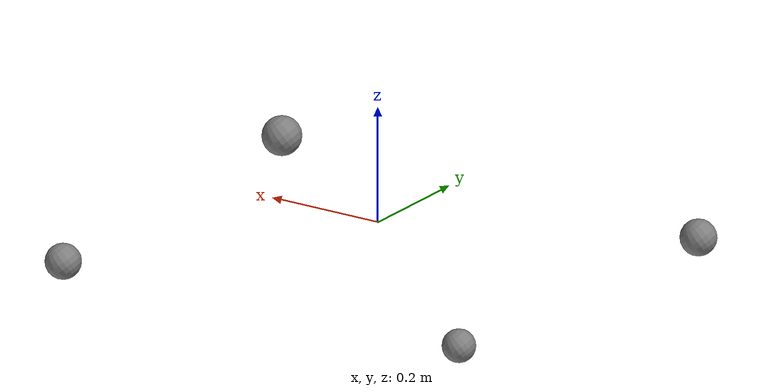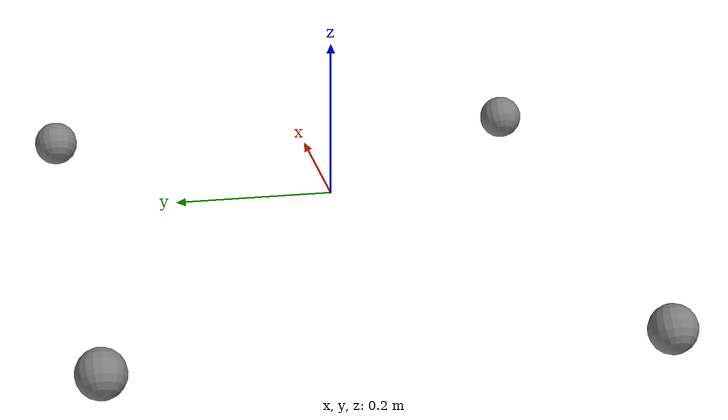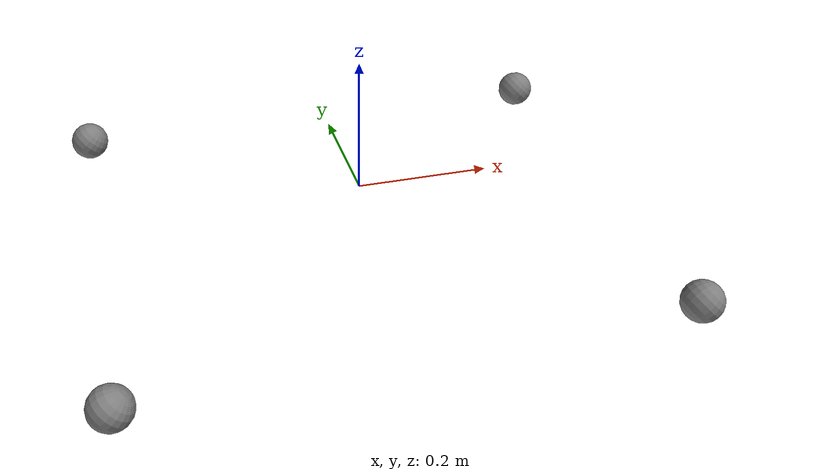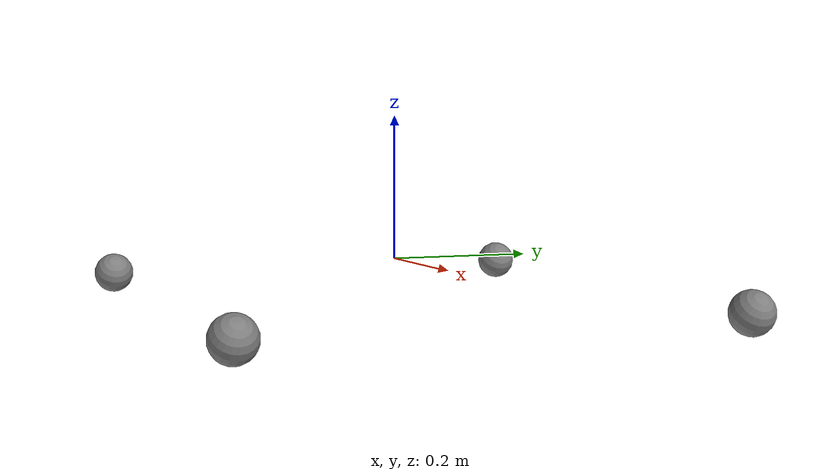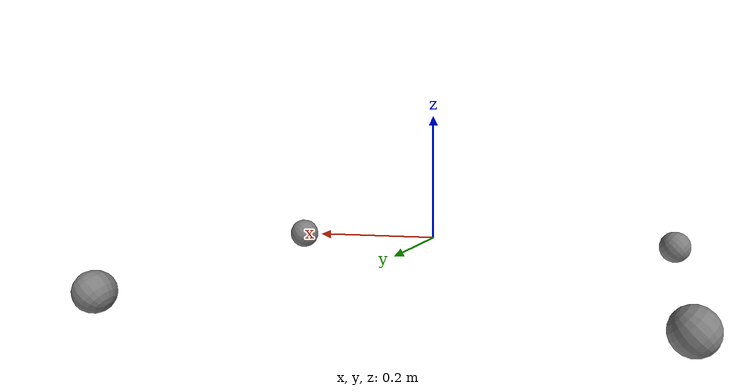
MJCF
<mujoco model="kyon">
  <compiler angle="radian"/>

  <worldbody>
    <body name="pelvis" pos="0 0 0.6">
      <inertial pos="0.0289242 0.00140306 0.0582193" quat="0.534499 0.4627 0.486194 0.513649" mass="29.7628" diaginertia="1.44559 1.43622 0.333359"/>
      <joint name="reference" type="free"/>
      <body name="hip_roll_1_link" pos="0.391 0.0775 0" quat="0.707107 0 0.707107 0">
        <inertial pos="-0.000673177 0.00653492 -0.115647" quat="0.714418 0.049129 -0.0515476 0.696087" mass="2.57724" diaginertia="0.0146936 0.0141982 0.00434233"/>
        <joint name="hip_roll_1" pos="0 0 0" axis="0 0 -1" range="-0.65 0.65" actuatorfrcrange="-185 185"/>
        <body name="hip_pitch_1_link" pos="0 -0.04746 0" quat="0.5 -0.5 0.5 0.5">
          <inertial pos="6.96539e-05 -0.0776661 0.146893" quat="0.811804 0.583816 0.00415654 -0.0107198" mass="6.43661" diaginertia="0.121449 0.109742 0.0183206"/>
          <joint name="hip_pitch_1" pos="0 0 0" axis="0 0 -1" range="-2.4056 2.4056" actuatorfrcrange="-185 185"/>
          <body name="knee_pitch_1_link" pos="0 -0.346 0.24606">
            <inertial pos="4.41503e-06 -0.130029 0.00631671" quat="0.764263 0.638276 0.0591287 -0.0707774" mass="0.822099" diaginertia="0.016645 0.0166448 0.000635156"/>
            <joint name="knee_pitch_1" pos="0 0 0" axis="0 0 -1" range="-3.2 3.2" actuatorfrcrange="-185 185"/>
            <geom name="contact_1" size="0.03" pos="0 -0.3 0.054" quat="0.653595 -0.653075 -0.27036 0.270576"/>
          </body>
        </body>
      </body>
      <body name="hip_roll_2_link" pos="0.391 -0.0775 0" quat="0.707107 0 0.707107 0">
        <inertial pos="-0.000673177 0.00653492 -0.115647" quat="0.696087 -0.0515476 0.049129 0.714418" mass="2.57724" diaginertia="0.0146936 0.0141982 0.00434233"/>
        <joint name="hip_roll_2" pos="0 0 0" axis="0 0 -1" range="-0.65 0.65" actuatorfrcrange="-185 185"/>
        <body name="hip_pitch_2_link" pos="0 0.04746 0" quat="0.5 0.5 -0.5 0.5">
          <inertial pos="6.96539e-05 -0.0776661 0.146893" quat="0.811804 0.583816 0.00415654 -0.0107198" mass="6.43661" diaginertia="0.121449 0.109742 0.0183206"/>
          <joint name="hip_pitch_2" pos="0 0 0" axis="0 0 -1" range="-2.3266 2.3266" actuatorfrcrange="-185 185"/>
          <body name="knee_pitch_2_link" pos="0 -0.346 0.24606">
            <inertial pos="4.41503e-06 -0.130029 0.00631671" quat="0.760704 0.635302 -0.0853446 0.102158" mass="0.822099" diaginertia="0.016645 0.0166448 0.000635156"/>
            <joint name="knee_pitch_2" pos="0 0 0" axis="0 0 -1" range="-3.2 3.2" actuatorfrcrange="-185 185"/>
            <geom name="contact_2" size="0.03" pos="0 -0.3 0.054" quat="0.270769 0.270554 0.652995 0.653515"/>
          </body>
        </body>
      </body>
      <body name="hip_roll_3_link" pos="-0.391 0.0775 0" quat="0.707107 0 -0.707107 0">
        <inertial pos="-0.000673177 0.00653492 -0.115647" quat="0.714418 0.049129 -0.0515476 0.696087" mass="2.57724" diaginertia="0.0146936 0.0141982 0.00434233"/>
        <joint name="hip_roll_3" pos="0 0 0" axis="0 0 -1" range="-0.65 0.65" actuatorfrcrange="-185 185"/>
        <body name="hip_pitch_3_link" pos="0 -0.04746 0" quat="0.5 -0.5 -0.5 -0.5">
          <inertial pos="6.96539e-05 -0.0776661 0.146893" quat="0.811804 0.583816 0.00415654 -0.0107198" mass="6.43661" diaginertia="0.121449 0.109742 0.0183206"/>
          <joint name="hip_pitch_3" pos="0 0 0" axis="0 0 -1" range="-2.4696 2.4696" actuatorfrcrange="-185 185"/>
          <body name="knee_pitch_3_link" pos="0 -0.346 0.24606">
            <inertial pos="4.41503e-06 -0.130029 0.00631671" quat="0.764263 0.638276 0.0591287 -0.0707774" mass="0.822099" diaginertia="0.016645 0.0166448 0.000635156"/>
            <joint name="knee_pitch_3" pos="0 0 0" axis="0 0 -1" range="-3.2 3.2" actuatorfrcrange="-185 185"/>
            <geom name="contact_3" size="0.03" pos="0 -0.3 0.054" quat="0.653595 -0.653075 -0.27036 0.270576"/>
          </body>
        </body>
      </body>
      <body name="hip_roll_4_link" pos="-0.391 -0.0775 0" quat="0.707107 0 -0.707107 0">
        <inertial pos="-0.000673177 0.00653492 -0.115647" quat="0.696087 -0.0515476 0.049129 0.714418" mass="2.57724" diaginertia="0.0146936 0.0141982 0.00434233"/>
        <joint name="hip_roll_4" pos="0 0 0" axis="0 0 -1" range="-0.65 0.65" actuatorfrcrange="-185 185"/>
        <body name="hip_pitch_4_link" pos="0 0.04746 0" quat="0.5 0.5 0.5 -0.5">
          <inertial pos="6.96539e-05 -0.0776661 0.146893" quat="0.811804 0.583816 0.00415654 -0.0107198" mass="6.43661" diaginertia="0.121449 0.109742 0.0183206"/>
          <joint name="hip_pitch_4" pos="0 0 0" axis="0 0 -1" range="-2.3426 2.3426" actuatorfrcrange="-185 185"/>
          <body name="knee_pitch_4_link" pos="0 -0.346 0.24606">
            <inertial pos="4.41503e-06 -0.130029 0.00631671" quat="0.760704 0.635302 -0.0853446 0.102158" mass="0.822099" diaginertia="0.016645 0.0166448 0.000635156"/>
            <joint name="knee_pitch_4" pos="0 0 0" axis="0 0 -1" range="-3.2 3.2" actuatorfrcrange="-185 185"/>
            <geom name="contact_4" size="0.03" pos="0 -0.3 0.054" quat="0.270769 0.270554 0.652995 0.653515"/>
          </body>
        </body>
      </body>
    </body>
  </worldbody>
</mujoco>
